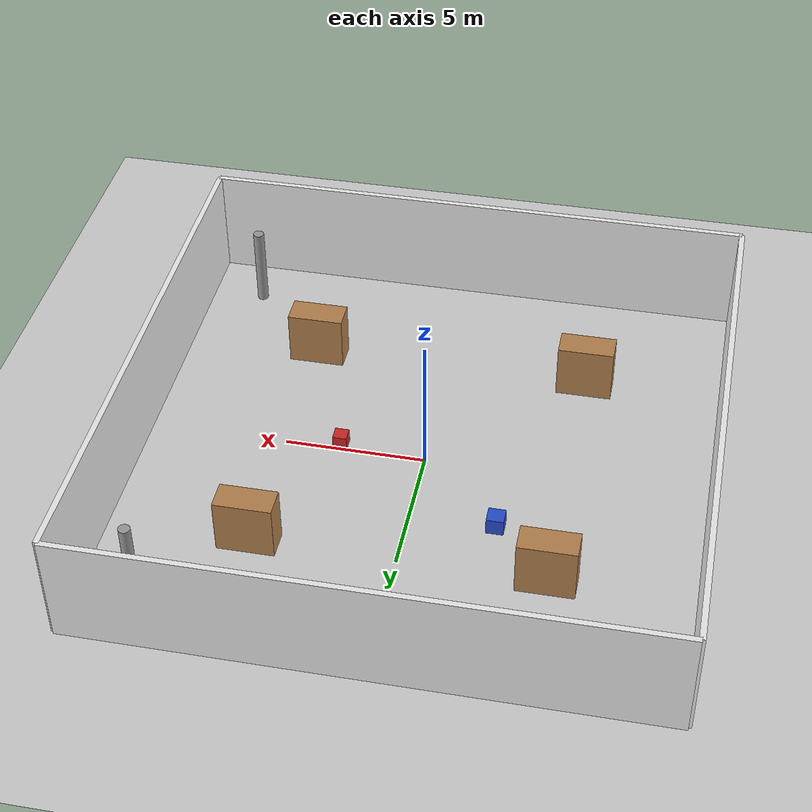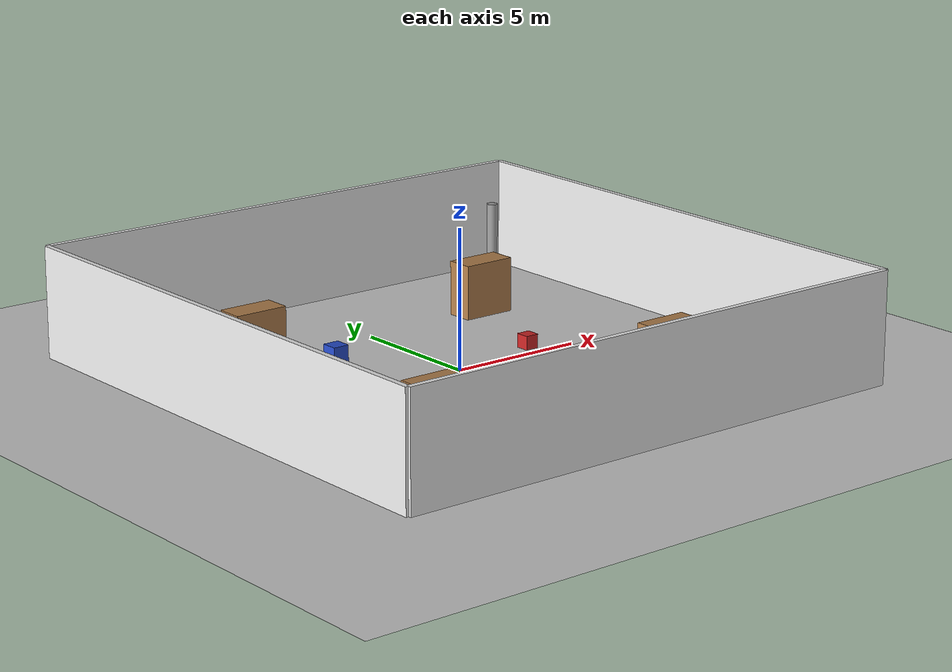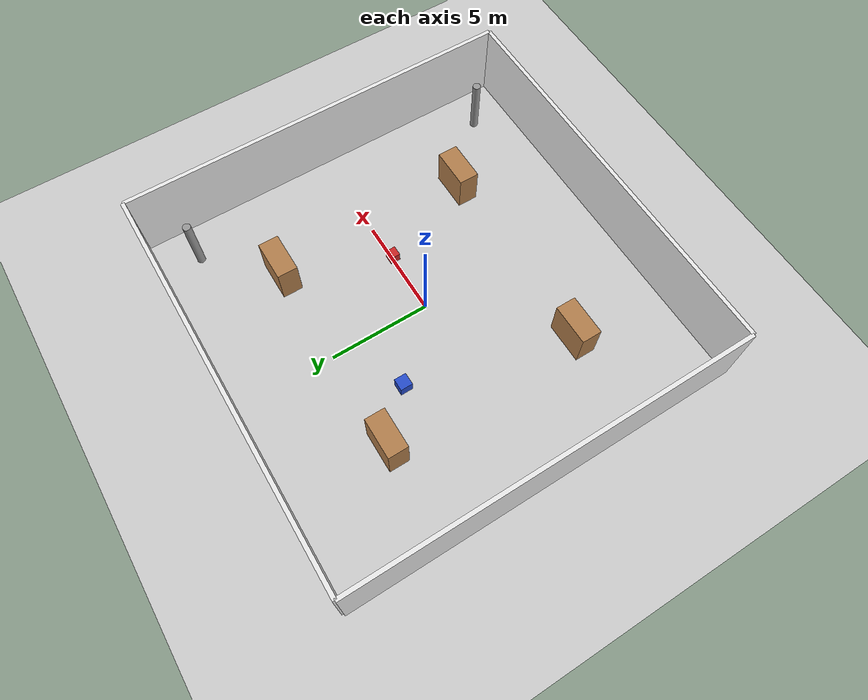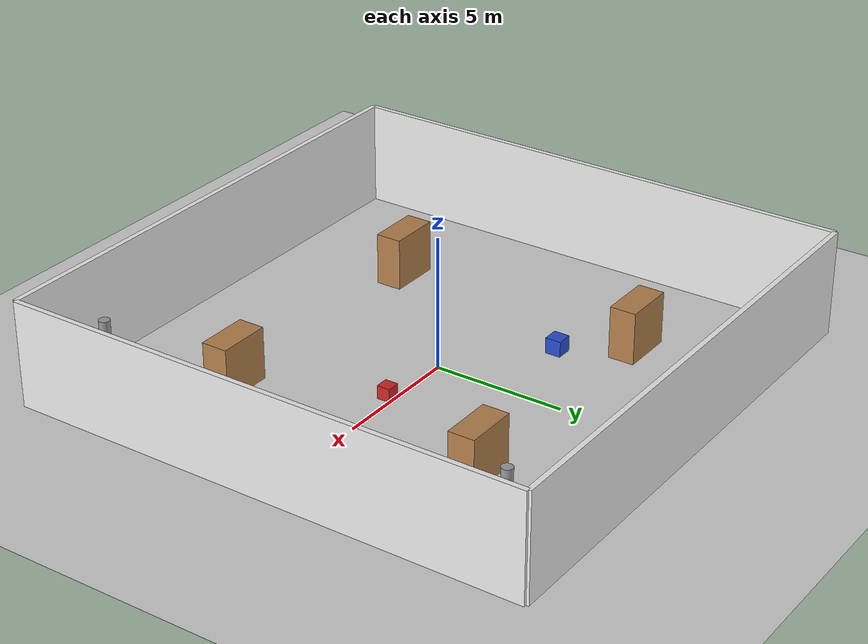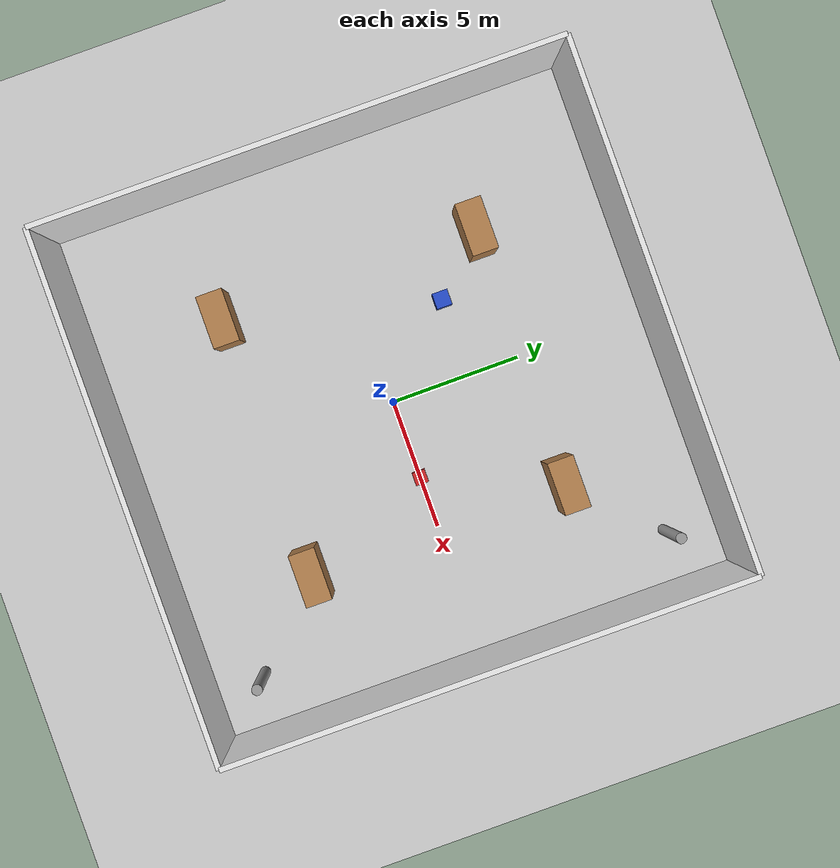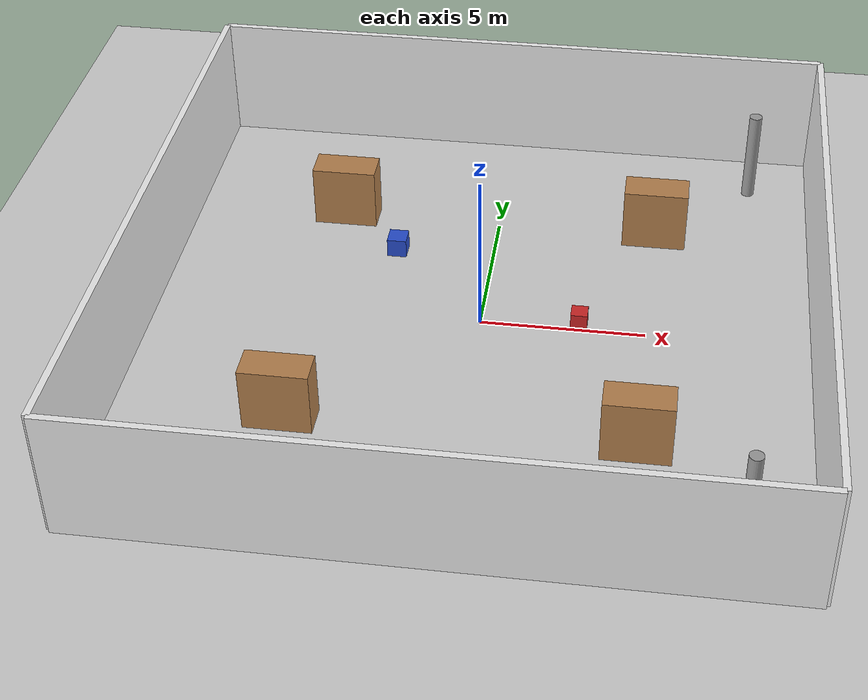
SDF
<?xml version="1.0"?>
<sdf version="1.6">
  <world name="custom_warehouse">

    <!-- Physics Engine -->
    <physics name="default_physics" default="true" type="ode">
      <max_step_size>0.001</max_step_size>
      <real_time_factor>1.0</real_time_factor>
      <real_time_update_rate>1000</real_time_update_rate>
    </physics>

    <!-- Global Lighting -->
    <light name="sun" type="directional">
      <cast_shadows>true</cast_shadows>
      <pose>0 0 10 0 0 0</pose>
      <diffuse>0.8 0.8 0.8 1</diffuse>
      <specular>0.2 0.2 0.2 1</specular>
      <attenuation>
        <range>1000</range>
        <constant>0.9</constant>
        <linear>0.01</linear>
        <quadratic>0.001</quadratic>
      </attenuation>
      <direction>-0.5 0.1 -0.9</direction>
    </light>

    <!-- Ground Plane -->
    <model name="ground_plane">
      <static>true</static>
      <link name="link">
        <collision name="collision">
          <geometry>
            <plane>
              <normal>0 0 1</normal>
              <size>50 50</size>
            </plane>
          </geometry>
          <surface>
            <friction>
              <ode>
                <mu>100</mu>
                <mu2>50</mu2>
              </ode>
            </friction>
          </surface>
        </collision>
        <visual name="visual">
          <geometry>
            <plane>
              <normal>0 0 1</normal>
              <size>50 50</size>
            </plane>
          </geometry>
          <material>
            <script>
              <uri>file://media/materials/scripts/gazebo.material</uri>
              <name>Gazebo/Grey</name>
            </script>
          </material>
        </visual>
      </link>
    </model>

    <!-- Warehouse Walls -->

    <!-- North Wall -->
    <model name="north_wall">
      <static>true</static>
      <pose>10 0 2 0 0 0</pose>
      <link name="link">
        <collision name="collision">
          <geometry>
            <box>
              <size>0.2 20 4</size>
            </box>
          </geometry>
        </collision>
        <visual name="visual">
          <geometry>
            <box>
              <size>0.2 20 4</size>
            </box>
          </geometry>
          <material>
            <script>
              <uri>file://media/materials/scripts/gazebo.material</uri>
              <name>Gazebo/White</name>
            </script>
          </material>
        </visual>
      </link>
    </model>

    <!-- South Wall -->
    <model name="south_wall">
      <static>true</static>
      <pose>-10 0 2 0 0 0</pose>
      <link name="link">
        <collision name="collision">
          <geometry>
            <box>
              <size>0.2 20 4</size>
            </box>
          </geometry>
        </collision>
        <visual name="visual">
          <geometry>
            <box>
              <size>0.2 20 4</size>
            </box>
          </geometry>
          <material>
            <script>
              <uri>file://media/materials/scripts/gazebo.material</uri>
              <name>Gazebo/White</name>
            </script>
          </material>
        </visual>
      </link>
    </model>

    <!-- East Wall -->
    <model name="east_wall">
      <static>true</static>
      <pose>0 10 2 0 0 0</pose>
      <link name="link">
        <collision name="collision">
          <geometry>
            <box>
              <size>20 0.2 4</size>
            </box>
          </geometry>
        </collision>
        <visual name="visual">
          <geometry>
            <box>
              <size>20 0.2 4</size>
            </box>
          </geometry>
          <material>
            <script>
              <uri>file://media/materials/scripts/gazebo.material</uri>
              <name>Gazebo/White</name>
            </script>
          </material>
        </visual>
      </link>
    </model>

    <!-- West Wall -->
    <model name="west_wall">
      <static>true</static>
      <pose>0 -10 2 0 0 0</pose>
      <link name="link">
        <collision name="collision">
          <geometry>
            <box>
              <size>20 0.2 4</size>
            </box>
          </geometry>
        </collision>
        <visual name="visual">
          <geometry>
            <box>
              <size>20 0.2 4</size>
            </box>
          </geometry>
          <material>
            <script>
              <uri>file://media/materials/scripts/gazebo.material</uri>
              <name>Gazebo/White</name>
            </script>
          </material>
        </visual>
      </link>
    </model>

    <!-- Storage Racks -->

    <!-- Rack 1 -->
    <model name="rack_1">
      <static>true</static>
      <pose>5 5 1 0 0 0</pose>
      <link name="link">
        <collision name="collision">
          <geometry>
            <box>
              <size>2 1 2</size>
            </box>
          </geometry>
        </collision>
        <visual name="visual">
          <geometry>
            <box>
              <size>2 1 2</size>
            </box>
          </geometry>
          <material>
            <script>
              <uri>file://media/materials/scripts/gazebo.material</uri>
              <name>Gazebo/Wood</name>
            </script>
          </material>
        </visual>
      </link>
    </model>

    <!-- Rack 2 -->
    <model name="rack_2">
      <static>true</static>
      <pose>5 -5 1 0 0 0</pose>
      <link name="link">
        <collision name="collision">
          <geometry>
            <box>
              <size>2 1 2</size>
            </box>
          </geometry>
        </collision>
        <visual name="visual">
          <geometry>
            <box>
              <size>2 1 2</size>
            </box>
          </geometry>
          <material>
            <script>
              <uri>file://media/materials/scripts/gazebo.material</uri>
              <name>Gazebo/Wood</name>
            </script>
          </material>
        </visual>
      </link>
    </model>

    <!-- Rack 3 -->
    <model name="rack_3">
      <static>true</static>
      <pose>-5 5 1 0 0 0</pose>
      <link name="link">
        <collision name="collision">
          <geometry>
            <box>
              <size>2 1 2</size>
            </box>
          </geometry>
        </collision>
        <visual name="visual">
          <geometry>
            <box>
              <size>2 1 2</size>
            </box>
          </geometry>
          <material>
            <script>
              <uri>file://media/materials/scripts/gazebo.material</uri>
              <name>Gazebo/Wood</name>
            </script>
          </material>
        </visual>
      </link>
    </model>

    <!-- Rack 4 -->
    <model name="rack_4">
      <static>true</static>
      <pose>-5 -5 1 0 0 0</pose>
      <link name="link">
        <collision name="collision">
          <geometry>
            <box>
              <size>2 1 2</size>
            </box>
          </geometry>
        </collision>
        <visual name="visual">
          <geometry>
            <box>
              <size>2 1 2</size>
            </box>
          </geometry>
          <material>
            <script>
              <uri>file://media/materials/scripts/gazebo.material</uri>
              <name>Gazebo/Wood</name>
            </script>
          </material>
        </visual>
      </link>
    </model>

    <!-- Crates/Boxes -->

    <!-- Crate 1 -->
    <model name="crate_1">
      <static>false</static>
      <pose>3 0 0.5 0 0 0</pose>
      <link name="link">
        <collision name="collision">
          <geometry>
            <box>
              <size>0.5 0.5 0.5</size>
            </box>
          </geometry>
        </collision>
        <visual name="visual">
          <geometry>
            <box>
              <size>0.5 0.5 0.5</size>
            </box>
          </geometry>
          <material>
            <script>
              <uri>file://media/materials/scripts/gazebo.material</uri>
              <name>Gazebo/Red</name>
            </script>
          </material>
        </visual>
      </link>
    </model>

    <!-- Crate 2 -->
    <model name="crate_2">
      <static>false</static>
      <pose>-3 3 0.5 0 0 0</pose>
      <link name="link">
        <collision name="collision">
          <geometry>
            <box>
              <size>0.6 0.6 0.6</size>
            </box>
          </geometry>
        </collision>
        <visual name="visual">
          <geometry>
            <box>
              <size>0.6 0.6 0.6</size>
            </box>
          </geometry>
          <material>
            <script>
              <uri>file://media/materials/scripts/gazebo.material</uri>
              <name>Gazebo/Blue</name>
            </script>
          </material>
        </visual>
      </link>
    </model>

    <!-- Pillars -->

    <!-- Pillar 1 -->
    <model name="pillar_1">
      <static>true</static>
      <pose>8 8 1.5 0 0 0</pose>
      <link name="link">
        <collision name="collision">
          <geometry>
            <cylinder>
              <radius>0.2</radius>
              <length>3</length>
            </cylinder>
          </geometry>
        </collision>
        <visual name="visual">
          <geometry>
            <cylinder>
              <radius>0.2</radius>
              <length>3</length>
            </cylinder>
          </geometry>
          <material>
            <script>
              <uri>file://media/materials/scripts/gazebo.material</uri>
              <name>Gazebo/Grey</name>
            </script>
          </material>
        </visual>
      </link>
    </model>

    <!-- Pillar 2 -->
    <model name="pillar_2">
      <static>true</static>
      <pose>8 -8 1.5 0 0 0</pose>
      <link name="link">
        <collision name="collision">
          <geometry>
            <cylinder>
              <radius>0.2</radius>
              <length>3</length>
            </cylinder>
          </geometry>
        </collision>
        <visual name="visual">
          <geometry>
            <cylinder>
              <radius>0.2</radius>
              <length>3</length>
            </cylinder>
          </geometry>
          <material>
            <script>
              <uri>file://media/materials/scripts/gazebo.material</uri>
              <name>Gazebo/Grey</name>
            </script>
          </material>
        </visual>
      </link>
    </model>

    <!-- Scene Settings -->
    <scene>
      <ambient>0.4 0.4 0.4 1</ambient>
      <background>0.7 0.7 0.7 1</background>
      <shadows>true</shadows>
    </scene>

    <!-- GUI Camera -->
    <gui fullscreen='0'>
      <camera name='user_camera'>
        <pose>0 0 15 0 0.5 0</pose>
        <view_controller>orbit</view_controller>
        <projection_type>perspective</projection_type>
      </camera>
    </gui>

  </world>
</sdf>
